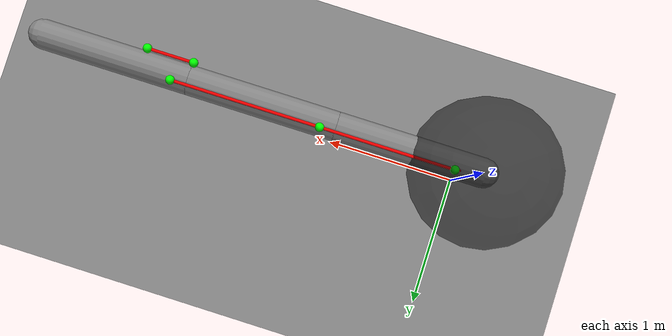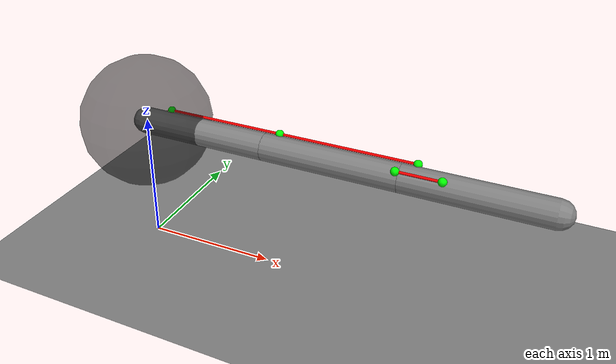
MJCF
<mujoco model="example">
    <compiler angle="radian" meshdir="meshes" autolimits="true" />
    <option timestep="0.01" gravity="0 0 -9.81" integrator="implicitfast" />
    <asset>
        <texture type="skybox" file="/home/albusgive/CPP_space/mujoco_test/desert.png"
            gridsize="3 4" gridlayout=".U..LFRB.D.." />
        <texture name="plane" type="2d" builtin="checker" rgb1=".1 .1 .1" rgb2=".9 .9 .9"
            width="512" height="512" mark="cross" markrgb=".8 .8 .8" />
        <material name="plane" reflectance="0.3" texture="plane" texrepeat="1 1" texuniform="true" />
    </asset>
    <visual>
        <!-- 质量 -->
        <quality shadowsize="16384" numslices="28" offsamples="4" />
        <headlight diffuse="1 1 1" specular="0.5 0.5 0.5" active="0" />
    </visual>

    <worldbody>
        <light directional="true" pos="0 0 30" dir="0 -0.5 -1" />
        <geom name="floor" pos="0 0 0" size="0 0 .25" type="plane" material="plane"
            condim="3" />

        <body pos="0 0 1">
            <site name="ceiling" pos="0 0 0" />
            <geom type="sphere" size="0.5" rgba="0 0 0 0.5"/>
            <body pos="0 0 0">
                <site name="hook1" type="sphere" size="0.03" pos="0.2 0.05 0.1" rgba="0 1 0 1" />
                <geom type="capsule" size="0.1" fromto="0 0 0 1 0 0" />
                <joint name="joint1" type="hinge" axis="0 0 1"/>
                <body pos="1 0 0">
                    <site name="hook2" type="sphere" size="0.03" pos="0.1 0.05 0.1" rgba="0 1 0 1" />
                    <site name="hook4" type="sphere" size="0.03" pos="0.99 -0.1 0.1" rgba="0 1 0 1" />
                    <geom type="capsule" size="0.1" fromto="0 0 0 1 0 0" />
                    <joint name="joint2" type="hinge" axis="0 0 1" range="0 1.57"/>
                    <body pos="1 0 0">
                        <site name="hook3" type="sphere" size="0.03" pos="0.1 0.05 0.1"
                            rgba="0 1 0 1" />
                        <geom type="capsule" size="0.1" fromto="0 0 0 1 0 0" />
                        <joint name="joint3" type="hinge" axis="0 0 1" range="0 0.78"/>
                        <site name="hook5" type="sphere" size="0.03" pos="0.3 -0.1 0.1"
                            rgba="0 1 0 1" />
                    </body>
                </body>
            </body>
        </body>
    </worldbody>

    <tendon>
        <spatial name="M" springlength="0 0.5" stiffness="1000" damping="10" width="0.01" rgba="1 0 0 1">
            <site site="ceiling" />
            <site site="hook1" />
            <site site="hook2" />
            <site site="hook3" />
        </spatial>
        <spatial name="A" springlength="0 0.5" stiffness="0" damping="10" width="0.01" rgba="1 0 0 1">
            <site site="hook4" />
            <site site="hook5" />
        </spatial>
    </tendon>
    <actuator>
        <muscle name="A" tendon="A" ctrlrange="-15 15"/>
    </actuator>
</mujoco>
